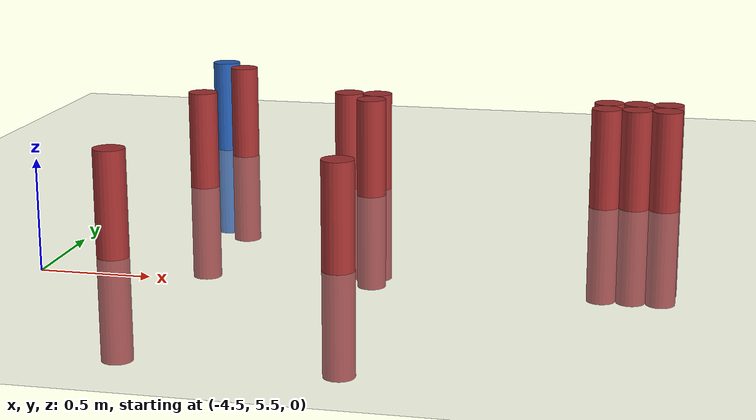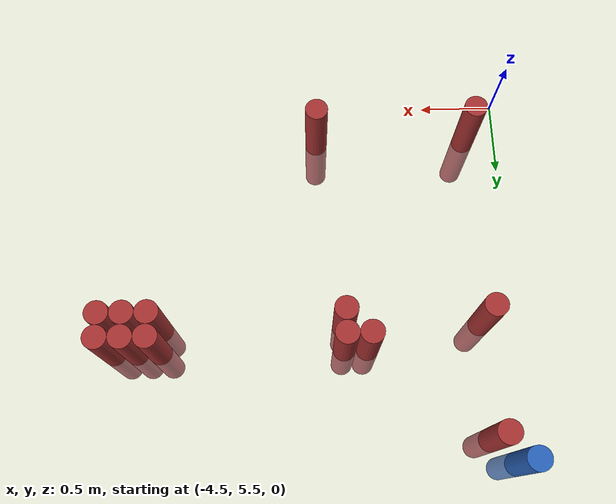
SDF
<sdf version="1.6">
 <world name="default">
  <model name="ground_plane">
   <static>1</static>
   <link name="link">
    <collision name="collision">
     <geometry><plane><normal>0 0 1</normal><size>100 100</size></plane></geometry>
     <surface><friction><ode><mu>100</mu><mu2>50</mu2></ode></friction></surface>
    </collision>
    <visual name="visual">
     <cast_shadows>0</cast_shadows>
     <geometry><plane><normal>0 0 1</normal><size>100 100</size></plane></geometry>
     <material>
      <script><uri>file://media/materials/scripts/gazebo.material</uri><name>Gazebo/Grey</name></script>
     </material>
    </visual>
   </link>
  </model>
  <model name="unit_cylinder_115">
   <static>1</static>
   <pose>-4.425000 8.025000 0.000000 0.000000 0.000000 0.000000</pose>
   <link name="link">
    <inertial>
     <mass>1</mass>
     <inertia><ixx>0.145833</ixx><ixy>0</ixy><ixz>0</ixz><iyy>0.145833</iyy><iyz>0</iyz><izz>0.125</izz></inertia>
    </inertial>
    <collision name="collision">
     <geometry><cylinder><radius>0.075000</radius><length>1</length></cylinder></geometry>
    </collision>
    <visual name="visual">
     <geometry><cylinder><radius>0.075000</radius><length>1</length></cylinder></geometry>
     <material>
      <ambient>0.152000 0.379000 0.720000 1</ambient>
      <diffuse>0.152000 0.379000 0.720000 1</diffuse>
     </material>
     <material>
      <script><name>Gazebo/Grey</name><uri>file://media/materials/scripts/gazebo.material</uri></script>
     </material>
    </visual>
   </link>
  </model>
  <model name="unit_cylinder_129">
   <static>1</static>
   <pose>-4.275000 5.775000 0.000000 0.000000 0.000000 0.000000</pose>
   <link name="link">
    <inertial>
     <mass>1</mass>
     <inertia><ixx>0.145833</ixx><ixy>0</ixy><ixz>0</ixz><iyy>0.145833</iyy><iyz>0</iyz><izz>0.125</izz></inertia>
    </inertial>
    <collision name="collision">
     <geometry><cylinder><radius>0.075000</radius><length>1</length></cylinder></geometry>
    </collision>
    <visual name="visual">
     <geometry><cylinder><radius>0.075000</radius><length>1</length></cylinder></geometry>
     <material>
      <ambient>0.648000 0.192000 0.192000 1</ambient>
      <diffuse>0.648000 0.192000 0.192000 1</diffuse>
     </material>
     <material>
      <script><name>Gazebo/Grey</name><uri>file://media/materials/scripts/gazebo.material</uri></script>
     </material>
    </visual>
   </link>
  </model>
  <model name="unit_cylinder_130">
   <static>1</static>
   <pose>-4.275000 7.125000 0.000000 0.000000 0.000000 0.000000</pose>
   <link name="link">
    <inertial>
     <mass>1</mass>
     <inertia><ixx>0.145833</ixx><ixy>0</ixy><ixz>0</ixz><iyy>0.145833</iyy><iyz>0</iyz><izz>0.125</izz></inertia>
    </inertial>
    <collision name="collision">
     <geometry><cylinder><radius>0.075000</radius><length>1</length></cylinder></geometry>
    </collision>
    <visual name="visual">
     <geometry><cylinder><radius>0.075000</radius><length>1</length></cylinder></geometry>
     <material>
      <ambient>0.648000 0.192000 0.192000 1</ambient>
      <diffuse>0.648000 0.192000 0.192000 1</diffuse>
     </material>
     <material>
      <script><name>Gazebo/Grey</name><uri>file://media/materials/scripts/gazebo.material</uri></script>
     </material>
    </visual>
   </link>
  </model>
  <model name="unit_cylinder_131">
   <static>1</static>
   <pose>-4.275000 7.875000 0.000000 0.000000 0.000000 0.000000</pose>
   <link name="link">
    <inertial>
     <mass>1</mass>
     <inertia><ixx>0.145833</ixx><ixy>0</ixy><ixz>0</ixz><iyy>0.145833</iyy><iyz>0</iyz><izz>0.125</izz></inertia>
    </inertial>
    <collision name="collision">
     <geometry><cylinder><radius>0.075000</radius><length>1</length></cylinder></geometry>
    </collision>
    <visual name="visual">
     <geometry><cylinder><radius>0.075000</radius><length>1</length></cylinder></geometry>
     <material>
      <ambient>0.648000 0.192000 0.192000 1</ambient>
      <diffuse>0.648000 0.192000 0.192000 1</diffuse>
     </material>
     <material>
      <script><name>Gazebo/Grey</name><uri>file://media/materials/scripts/gazebo.material</uri></script>
     </material>
    </visual>
   </link>
  </model>
  <model name="unit_cylinder_144">
   <static>1</static>
   <pose>-3.525000 7.275000 0.000000 0.000000 0.000000 0.000000</pose>
   <link name="link">
    <inertial>
     <mass>1</mass>
     <inertia><ixx>0.145833</ixx><ixy>0</ixy><ixz>0</ixz><iyy>0.145833</iyy><iyz>0</iyz><izz>0.125</izz></inertia>
    </inertial>
    <collision name="collision">
     <geometry><cylinder><radius>0.075000</radius><length>1</length></cylinder></geometry>
    </collision>
    <visual name="visual">
     <geometry><cylinder><radius>0.075000</radius><length>1</length></cylinder></geometry>
     <material>
      <ambient>0.648000 0.192000 0.192000 1</ambient>
      <diffuse>0.648000 0.192000 0.192000 1</diffuse>
     </material>
     <material>
      <script><name>Gazebo/Grey</name><uri>file://media/materials/scripts/gazebo.material</uri></script>
     </material>
    </visual>
   </link>
  </model>
  <model name="unit_cylinder_146">
   <static>1</static>
   <pose>-3.375000 7.125000 0.000000 0.000000 0.000000 0.000000</pose>
   <link name="link">
    <inertial>
     <mass>1</mass>
     <inertia><ixx>0.145833</ixx><ixy>0</ixy><ixz>0</ixz><iyy>0.145833</iyy><iyz>0</iyz><izz>0.125</izz></inertia>
    </inertial>
    <collision name="collision">
     <geometry><cylinder><radius>0.075000</radius><length>1</length></cylinder></geometry>
    </collision>
    <visual name="visual">
     <geometry><cylinder><radius>0.075000</radius><length>1</length></cylinder></geometry>
     <material>
      <ambient>0.648000 0.192000 0.192000 1</ambient>
      <diffuse>0.648000 0.192000 0.192000 1</diffuse>
     </material>
     <material>
      <script><name>Gazebo/Grey</name><uri>file://media/materials/scripts/gazebo.material</uri></script>
     </material>
    </visual>
   </link>
  </model>
  <model name="unit_cylinder_147">
   <static>1</static>
   <pose>-3.375000 7.275000 0.000000 0.000000 0.000000 0.000000</pose>
   <link name="link">
    <inertial>
     <mass>1</mass>
     <inertia><ixx>0.145833</ixx><ixy>0</ixy><ixz>0</ixz><iyy>0.145833</iyy><iyz>0</iyz><izz>0.125</izz></inertia>
    </inertial>
    <collision name="collision">
     <geometry><cylinder><radius>0.075000</radius><length>1</length></cylinder></geometry>
    </collision>
    <visual name="visual">
     <geometry><cylinder><radius>0.075000</radius><length>1</length></cylinder></geometry>
     <material>
      <ambient>0.648000 0.192000 0.192000 1</ambient>
      <diffuse>0.648000 0.192000 0.192000 1</diffuse>
     </material>
     <material>
      <script><name>Gazebo/Grey</name><uri>file://media/materials/scripts/gazebo.material</uri></script>
     </material>
    </visual>
   </link>
  </model>
  <model name="unit_cylinder_149">
   <static>1</static>
   <pose>-3.225000 5.775000 0.000000 0.000000 0.000000 0.000000</pose>
   <link name="link">
    <inertial>
     <mass>1</mass>
     <inertia><ixx>0.145833</ixx><ixy>0</ixy><ixz>0</ixz><iyy>0.145833</iyy><iyz>0</iyz><izz>0.125</izz></inertia>
    </inertial>
    <collision name="collision">
     <geometry><cylinder><radius>0.075000</radius><length>1</length></cylinder></geometry>
    </collision>
    <visual name="visual">
     <geometry><cylinder><radius>0.075000</radius><length>1</length></cylinder></geometry>
     <material>
      <ambient>0.648000 0.192000 0.192000 1</ambient>
      <diffuse>0.648000 0.192000 0.192000 1</diffuse>
     </material>
     <material>
      <script><name>Gazebo/Grey</name><uri>file://media/materials/scripts/gazebo.material</uri></script>
     </material>
    </visual>
   </link>
  </model>
  <model name="unit_cylinder_158">
   <static>1</static>
   <pose>-2.175000 7.125000 0.000000 0.000000 0.000000 0.000000</pose>
   <link name="link">
    <inertial>
     <mass>1</mass>
     <inertia><ixx>0.145833</ixx><ixy>0</ixy><ixz>0</ixz><iyy>0.145833</iyy><iyz>0</iyz><izz>0.125</izz></inertia>
    </inertial>
    <collision name="collision">
     <geometry><cylinder><radius>0.075000</radius><length>1</length></cylinder></geometry>
    </collision>
    <visual name="visual">
     <geometry><cylinder><radius>0.075000</radius><length>1</length></cylinder></geometry>
     <material>
      <ambient>0.648000 0.192000 0.192000 1</ambient>
      <diffuse>0.648000 0.192000 0.192000 1</diffuse>
     </material>
     <material>
      <script><name>Gazebo/Grey</name><uri>file://media/materials/scripts/gazebo.material</uri></script>
     </material>
    </visual>
   </link>
  </model>
  <model name="unit_cylinder_159">
   <static>1</static>
   <pose>-2.175000 7.275000 0.000000 0.000000 0.000000 0.000000</pose>
   <link name="link">
    <inertial>
     <mass>1</mass>
     <inertia><ixx>0.145833</ixx><ixy>0</ixy><ixz>0</ixz><iyy>0.145833</iyy><iyz>0</iyz><izz>0.125</izz></inertia>
    </inertial>
    <collision name="collision">
     <geometry><cylinder><radius>0.075000</radius><length>1</length></cylinder></geometry>
    </collision>
    <visual name="visual">
     <geometry><cylinder><radius>0.075000</radius><length>1</length></cylinder></geometry>
     <material>
      <ambient>0.648000 0.192000 0.192000 1</ambient>
      <diffuse>0.648000 0.192000 0.192000 1</diffuse>
     </material>
     <material>
      <script><name>Gazebo/Grey</name><uri>file://media/materials/scripts/gazebo.material</uri></script>
     </material>
    </visual>
   </link>
  </model>
  <model name="unit_cylinder_160">
   <static>1</static>
   <pose>-2.025000 7.125000 0.000000 0.000000 0.000000 0.000000</pose>
   <link name="link">
    <inertial>
     <mass>1</mass>
     <inertia><ixx>0.145833</ixx><ixy>0</ixy><ixz>0</ixz><iyy>0.145833</iyy><iyz>0</iyz><izz>0.125</izz></inertia>
    </inertial>
    <collision name="collision">
     <geometry><cylinder><radius>0.075000</radius><length>1</length></cylinder></geometry>
    </collision>
    <visual name="visual">
     <geometry><cylinder><radius>0.075000</radius><length>1</length></cylinder></geometry>
     <material>
      <ambient>0.648000 0.192000 0.192000 1</ambient>
      <diffuse>0.648000 0.192000 0.192000 1</diffuse>
     </material>
     <material>
      <script><name>Gazebo/Grey</name><uri>file://media/materials/scripts/gazebo.material</uri></script>
     </material>
    </visual>
   </link>
  </model>
  <model name="unit_cylinder_161">
   <static>1</static>
   <pose>-2.025000 7.275000 0.000000 0.000000 0.000000 0.000000</pose>
   <link name="link">
    <inertial>
     <mass>1</mass>
     <inertia><ixx>0.145833</ixx><ixy>0</ixy><ixz>0</ixz><iyy>0.145833</iyy><iyz>0</iyz><izz>0.125</izz></inertia>
    </inertial>
    <collision name="collision">
     <geometry><cylinder><radius>0.075000</radius><length>1</length></cylinder></geometry>
    </collision>
    <visual name="visual">
     <geometry><cylinder><radius>0.075000</radius><length>1</length></cylinder></geometry>
     <material>
      <ambient>0.648000 0.192000 0.192000 1</ambient>
      <diffuse>0.648000 0.192000 0.192000 1</diffuse>
     </material>
     <material>
      <script><name>Gazebo/Grey</name><uri>file://media/materials/scripts/gazebo.material</uri></script>
     </material>
    </visual>
   </link>
  </model>
  <model name="unit_cylinder_162">
   <static>1</static>
   <pose>-1.875000 7.125000 0.000000 0.000000 0.000000 0.000000</pose>
   <link name="link">
    <inertial>
     <mass>1</mass>
     <inertia><ixx>0.145833</ixx><ixy>0</ixy><ixz>0</ixz><iyy>0.145833</iyy><iyz>0</iyz><izz>0.125</izz></inertia>
    </inertial>
    <collision name="collision">
     <geometry><cylinder><radius>0.075000</radius><length>1</length></cylinder></geometry>
    </collision>
    <visual name="visual">
     <geometry><cylinder><radius>0.075000</radius><length>1</length></cylinder></geometry>
     <material>
      <ambient>0.648000 0.192000 0.192000 1</ambient>
      <diffuse>0.648000 0.192000 0.192000 1</diffuse>
     </material>
     <material>
      <script><name>Gazebo/Grey</name><uri>file://media/materials/scripts/gazebo.material</uri></script>
     </material>
    </visual>
   </link>
  </model>
  <model name="unit_cylinder_163">
   <static>1</static>
   <pose>-1.875000 7.275000 0.000000 0.000000 0.000000 0.000000</pose>
   <link name="link">
    <inertial>
     <mass>1</mass>
     <inertia><ixx>0.145833</ixx><ixy>0</ixy><ixz>0</ixz><iyy>0.145833</iyy><iyz>0</iyz><izz>0.125</izz></inertia>
    </inertial>
    <collision name="collision">
     <geometry><cylinder><radius>0.075000</radius><length>1</length></cylinder></geometry>
    </collision>
    <visual name="visual">
     <geometry><cylinder><radius>0.075000</radius><length>1</length></cylinder></geometry>
     <material>
      <ambient>0.648000 0.192000 0.192000 1</ambient>
      <diffuse>0.648000 0.192000 0.192000 1</diffuse>
     </material>
     <material>
      <script><name>Gazebo/Grey</name><uri>file://media/materials/scripts/gazebo.material</uri></script>
     </material>
    </visual>
   </link>
  </model>
 </world>
</sdf>
